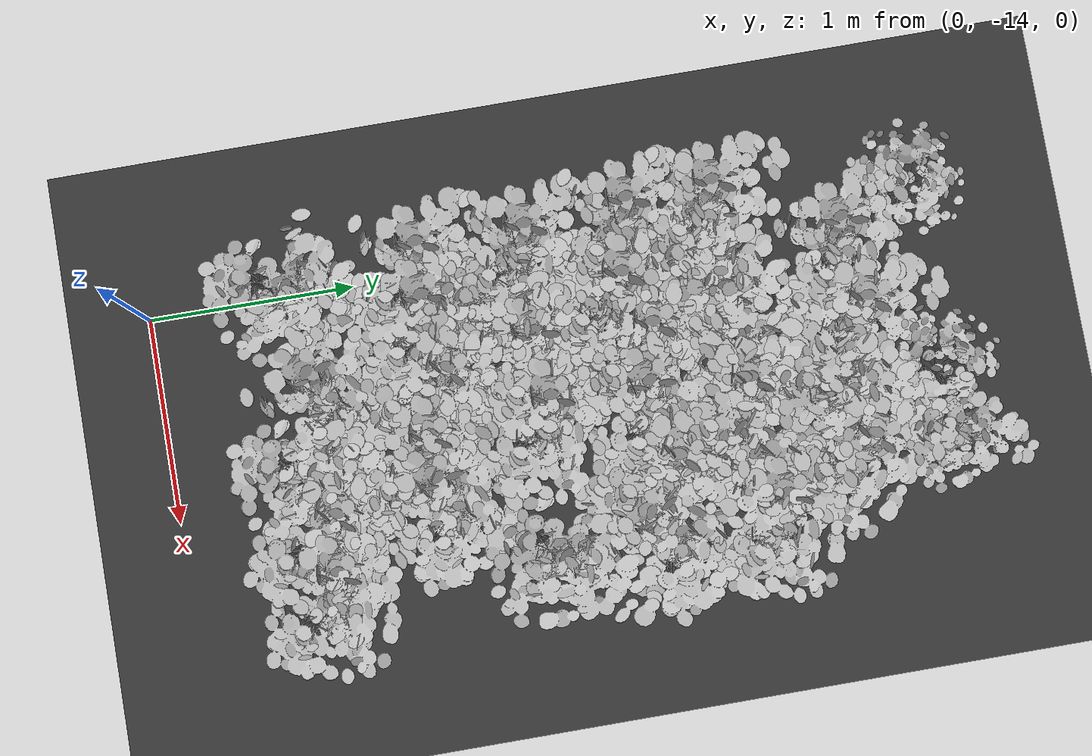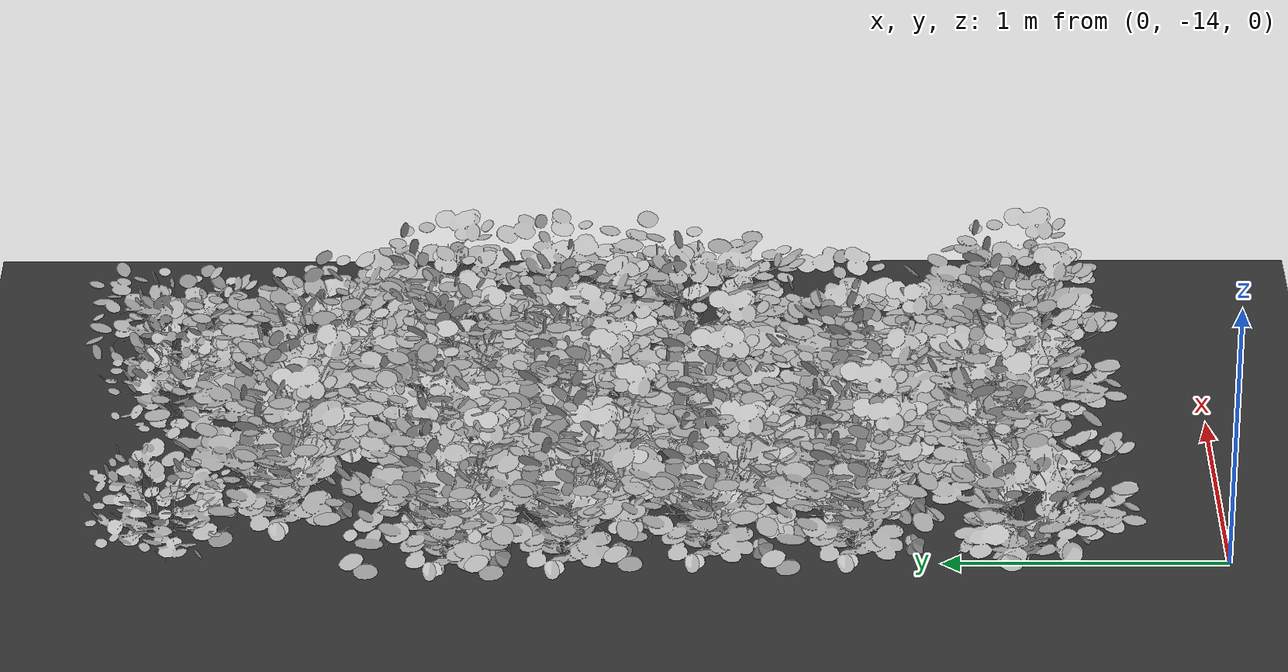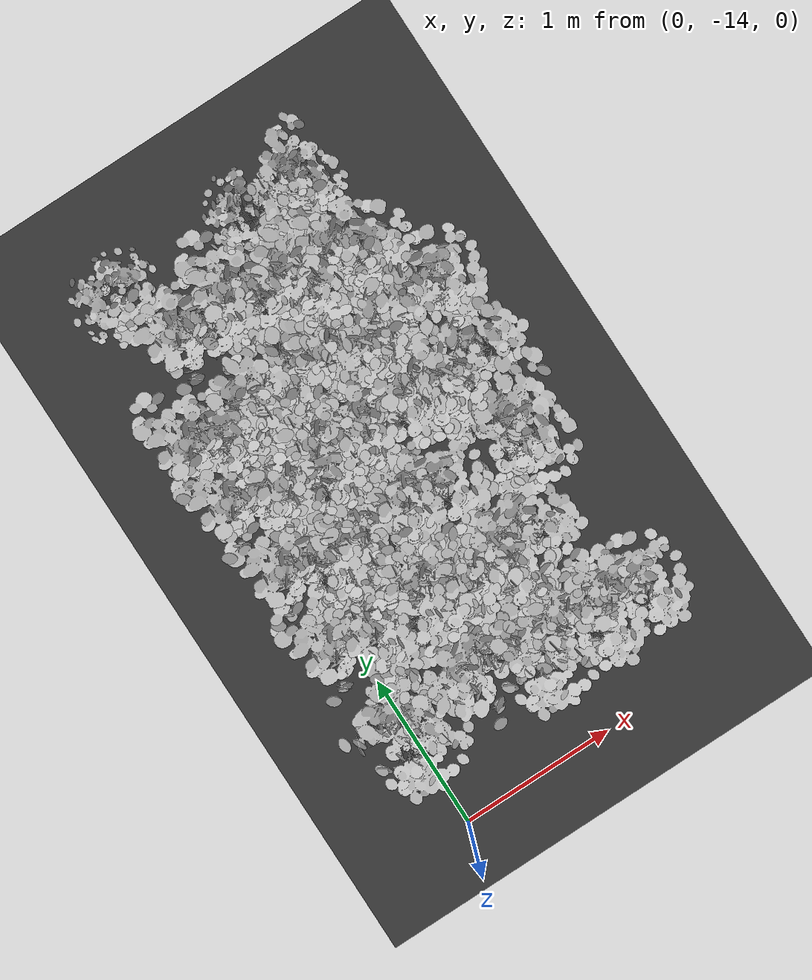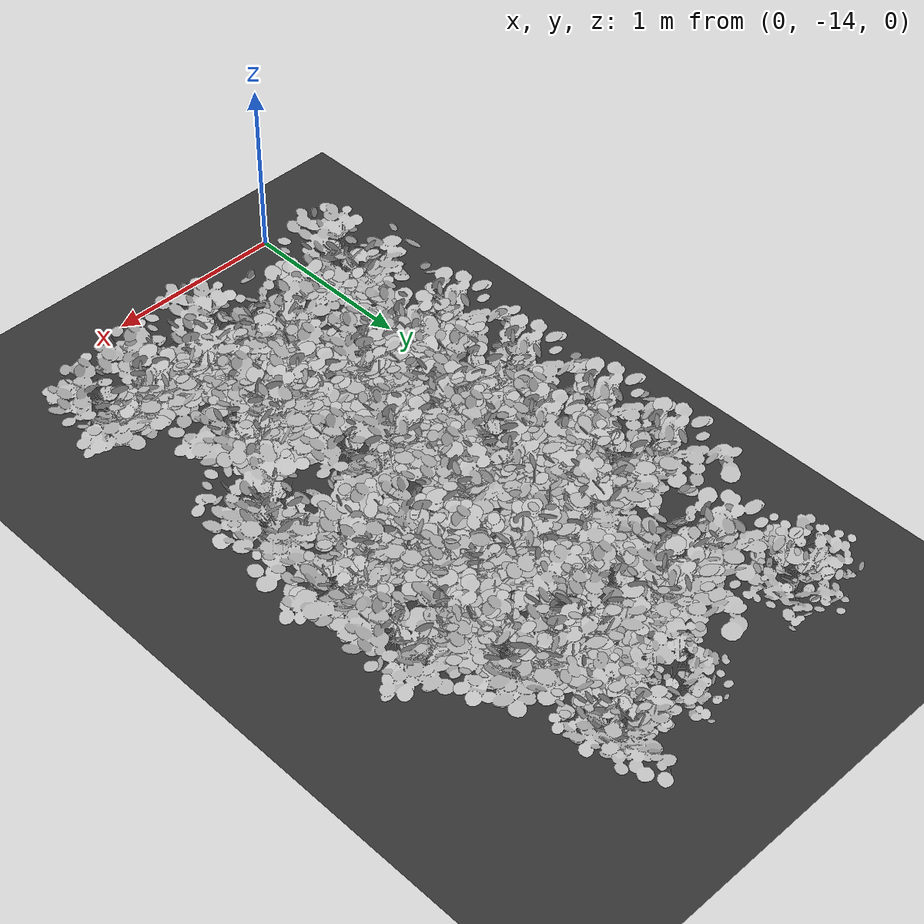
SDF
<sdf version="1.7">
 <world name="default">
  <model name="ground_plane">
   <static>1</static>
   <link name="link">
    <collision name="collision">
     <geometry><plane><normal>0 0 1</normal><size>100 100</size></plane></geometry>
     <surface>
      <contact><collide_bitmask>65535</collide_bitmask></contact>
      <friction><ode><mu>100</mu><mu2>50</mu2></ode></friction>
     </surface>
    </collision>
    <visual name="visual">
     <cast_shadows>0</cast_shadows>
     <geometry><plane><normal>0 0 1</normal><size>100 100</size></plane></geometry>
     <material>
      <ambient>0.2 0.2 0.2 1.0</ambient>
      <diffuse>0.2 0.2 0.2 1.0</diffuse>
      <specular>0.2 0.2 0.2 1.0</specular>
      <emissive>0.2 0.2 0.2 1.0</emissive>
     </material>
    </visual>
   </link>
  </model>
  <model name="ground">
   <pose>5 -0.5 0.01  3.141592654 0 0</pose>
   <static>true</static>
   <link name="body">
    <visual name="visual">
     <cast_shadows>0</cast_shadows>
     <geometry>
      <mesh><uri>file:///home/ifcosta/catkin_ws/src/cnn_line/worlds/models/ground.obj</uri></mesh>
     </geometry>
    </visual>
   </link>
  </model>
  <model name="plt_30000">
   <pose>-0.000553 -10.3 0.0132 0.0 0.0 0.64766</pose>
   <static>true</static>
   <link name="body">
    <visual name="visual">
     <geometry>
      <mesh><uri>file:///home/ifcosta/catkin_ws/src/cnn_line/worlds/models/plant35.obj</uri></mesh>
     </geometry>
    </visual>
   </link>
  </model>
  <model name="plt_40000">
   <pose>-0.000553 -13.3 0.0132 0.0 0.0 -1.082</pose>
   <static>true</static>
   <link name="body">
    <visual name="visual">
     <geometry>
      <mesh><uri>file:///home/ifcosta/catkin_ws/src/cnn_line/worlds/models/plant37.obj</uri></mesh>
     </geometry>
    </visual>
   </link>
  </model>
  <model name="plt_40002">
   <pose>0.57 -13.2 0.0132 0.0 0.0 0.66731</pose>
   <static>true</static>
   <link name="body">
    <visual name="visual">
     <geometry>
      <mesh><uri>file:///home/ifcosta/catkin_ws/src/cnn_line/worlds/models/plant37.obj</uri></mesh>
     </geometry>
    </visual>
   </link>
  </model>
  <model name="plt_30003">
   <pose>0.885 -10.3 0.0162 0.0 0.0 1.7194</pose>
   <static>true</static>
   <link name="body">
    <visual name="visual">
     <geometry>
      <mesh><uri>file:///home/ifcosta/catkin_ws/src/cnn_line/worlds/models/plant35.obj</uri></mesh>
     </geometry>
    </visual>
   </link>
  </model>
  <model name="plt_40003">
   <pose>0.885 -13.3 0.0162 0.0 0.0 -1.0955</pose>
   <static>true</static>
   <link name="body">
    <visual name="visual">
     <geometry>
      <mesh><uri>file:///home/ifcosta/catkin_ws/src/cnn_line/worlds/models/plant37.obj</uri></mesh>
     </geometry>
    </visual>
   </link>
  </model>
  <model name="plt_30004">
   <pose>1.21 -10.3 0.0178 0.0 0.0 -1.0621</pose>
   <static>true</static>
   <link name="body">
    <visual name="visual">
     <geometry>
      <mesh><uri>file:///home/ifcosta/catkin_ws/src/cnn_line/worlds/models/plant36.obj</uri></mesh>
     </geometry>
    </visual>
   </link>
  </model>
  <model name="plt_40004">
   <pose>1.21 -13.3 0.0178 0.0 0.0 -0.34675</pose>
   <static>true</static>
   <link name="body">
    <visual name="visual">
     <geometry>
      <mesh><uri>file:///home/ifcosta/catkin_ws/src/cnn_line/worlds/models/plant37.obj</uri></mesh>
     </geometry>
    </visual>
   </link>
  </model>
  <model name="plt_40005">
   <pose>1.5 -13.3 0.0163 0.0 0.0 -0.058842</pose>
   <static>true</static>
   <link name="body">
    <visual name="visual">
     <geometry>
      <mesh><uri>file:///home/ifcosta/catkin_ws/src/cnn_line/worlds/models/plant37.obj</uri></mesh>
     </geometry>
    </visual>
   </link>
  </model>
  <model name="plt_40034">
   <pose>0.0405 -12.7 0.0151 0.0 0.0 -0.020728</pose>
   <static>true</static>
   <link name="body">
    <visual name="visual">
     <geometry>
      <mesh><uri>file:///home/ifcosta/catkin_ws/src/cnn_line/worlds/models/plant37.obj</uri></mesh>
     </geometry>
    </visual>
   </link>
  </model>
  <model name="plt_40035">
   <pose>0.297 -12.7 0.019 0.0 0.0 0.081884</pose>
   <static>true</static>
   <link name="body">
    <visual name="visual">
     <geometry>
      <mesh><uri>file:///home/ifcosta/catkin_ws/src/cnn_line/worlds/models/plant37.obj</uri></mesh>
     </geometry>
    </visual>
   </link>
  </model>
  <model name="plt_40036">
   <pose>0.611 -12.7 0.0138 0.0 0.0 -0.47588</pose>
   <static>true</static>
   <link name="body">
    <visual name="visual">
     <geometry>
      <mesh><uri>file:///home/ifcosta/catkin_ws/src/cnn_line/worlds/models/plant37.obj</uri></mesh>
     </geometry>
    </visual>
   </link>
  </model>
  <model name="plt_40037">
   <pose>0.934 -12.8 0.0124 0.0 0.0 -0.18057</pose>
   <static>true</static>
   <link name="body">
    <visual name="visual">
     <geometry>
      <mesh><uri>file:///home/ifcosta/catkin_ws/src/cnn_line/worlds/models/plant37.obj</uri></mesh>
     </geometry>
    </visual>
   </link>
  </model>
  <model name="plt_40038">
   <pose>1.16 -12.7 0.014 0.0 0.0 0.52625</pose>
   <static>true</static>
   <link name="body">
    <visual name="visual">
     <geometry>
      <mesh><uri>file:///home/ifcosta/catkin_ws/src/cnn_line/worlds/models/plant37.obj</uri></mesh>
     </geometry>
    </visual>
   </link>
  </model>
  <model name="plt_40068">
   <pose>0.0357 -12.2 0.0153 0.0 0.0 -0.13847</pose>
   <static>true</static>
   <link name="body">
    <visual name="visual">
     <geometry>
      <mesh><uri>file:///home/ifcosta/catkin_ws/src/cnn_line/worlds/models/plant37.obj</uri></mesh>
     </geometry>
    </visual>
   </link>
  </model>
  <model name="plt_40069">
   <pose>0.307 -12.3 0.015 0.0 0.0 -1.3733</pose>
   <static>true</static>
   <link name="body">
    <visual name="visual">
     <geometry>
      <mesh><uri>file:///home/ifcosta/catkin_ws/src/cnn_line/worlds/models/plant37.obj</uri></mesh>
     </geometry>
    </visual>
   </link>
  </model>
  <model name="plt_40070">
   <pose>0.559 -12.2 0.0151 0.0 0.0 0.16632</pose>
   <static>true</static>
   <link name="body">
    <visual name="visual">
     <geometry>
      <mesh><uri>file:///home/ifcosta/catkin_ws/src/cnn_line/worlds/models/plant37.obj</uri></mesh>
     </geometry>
    </visual>
   </link>
  </model>
  <model name="plt_40071">
   <pose>0.858 -12.2 0.0126 0.0 0.0 -0.050655</pose>
   <static>true</static>
   <link name="body">
    <visual name="visual">
     <geometry>
      <mesh><uri>file:///home/ifcosta/catkin_ws/src/cnn_line/worlds/models/plant37.obj</uri></mesh>
     </geometry>
    </visual>
   </link>
  </model>
  <model name="plt_40073">
   <pose>1.47 -12.2 0.0157 0.0 0.0 -1.381</pose>
   <static>true</static>
   <link name="body">
    <visual name="visual">
     <geometry>
      <mesh><uri>file:///home/ifcosta/catkin_ws/src/cnn_line/worlds/models/plant37.obj</uri></mesh>
     </geometry>
    </visual>
   </link>
  </model>
  <model name="plt_40102">
   <pose>-0.0036 -11.7 0.0161 0.0 0.0 -0.064446</pose>
   <static>true</static>
   <link name="body">
    <visual name="visual">
     <geometry>
      <mesh><uri>file:///home/ifcosta/catkin_ws/src/cnn_line/worlds/models/plant37.obj</uri></mesh>
     </geometry>
    </visual>
   </link>
  </model>
  <model name="plt_40103">
   <pose>0.327 -11.8 0.0177 0.0 0.0 -0.24208</pose>
   <static>true</static>
   <link name="body">
    <visual name="visual">
     <geometry>
      <mesh><uri>file:///home/ifcosta/catkin_ws/src/cnn_line/worlds/models/plant37.obj</uri></mesh>
     </geometry>
    </visual>
   </link>
  </model>
  <model name="plt_40104">
   <pose>0.583 -11.7 0.0131 0.0 0.0 -0.26739</pose>
   <static>true</static>
   <link name="body">
    <visual name="visual">
     <geometry>
      <mesh><uri>file:///home/ifcosta/catkin_ws/src/cnn_line/worlds/models/plant37.obj</uri></mesh>
     </geometry>
    </visual>
   </link>
  </model>
  <model name="plt_40105">
   <pose>0.88 -11.7 0.0171 0.0 0.0 0.22045</pose>
   <static>true</static>
   <link name="body">
    <visual name="visual">
     <geometry>
      <mesh><uri>file:///home/ifcosta/catkin_ws/src/cnn_line/worlds/models/plant37.obj</uri></mesh>
     </geometry>
    </visual>
   </link>
  </model>
  <model name="plt_40106">
   <pose>1.18 -11.7 0.0154 0.0 0.0 -0.52182</pose>
   <static>true</static>
   <link name="body">
    <visual name="visual">
     <geometry>
      <mesh><uri>file:///home/ifcosta/catkin_ws/src/cnn_line/worlds/models/plant37.obj</uri></mesh>
     </geometry>
    </visual>
   </link>
  </model>
  <model name="plt_40107">
   <pose>1.47 -11.7 0.0135 0.0 0.0 0.90454</pose>
   <static>true</static>
   <link name="body">
    <visual name="visual">
     <geometry>
      <mesh><uri>file:///home/ifcosta/catkin_ws/src/cnn_line/worlds/models/plant37.obj</uri></mesh>
     </geometry>
    </visual>
   </link>
  </model>
  <model name="plt_40136">
   <pose>-0.0215 -11.3 0.0179 0.0 0.0 -0.15117</pose>
   <static>true</static>
   <link name="body">
    <visual name="visual">
     <geometry>
      <mesh><uri>file:///home/ifcosta/catkin_ws/src/cnn_line/worlds/models/plant37.obj</uri></mesh>
     </geometry>
    </visual>
   </link>
  </model>
  <model name="plt_40137">
   <pose>0.264 -11.3 0.0141 0.0 0.0 -1.2981</pose>
   <static>true</static>
   <link name="body">
    <visual name="visual">
     <geometry>
      <mesh><uri>file:///home/ifcosta/catkin_ws/src/cnn_line/worlds/models/plant37.obj</uri></mesh>
     </geometry>
    </visual>
   </link>
  </model>
  <model name="plt_40138">
   <pose>0.559 -11.2 0.014 0.0 0.0 -2.1423</pose>
   <static>true</static>
   <link name="body">
    <visual name="visual">
     <geometry>
      <mesh><uri>file:///home/ifcosta/catkin_ws/src/cnn_line/worlds/models/plant37.obj</uri></mesh>
     </geometry>
    </visual>
   </link>
  </model>
  <model name="plt_40139">
   <pose>0.912 -11.3 0.0127 0.0 0.0 -0.28607</pose>
   <static>true</static>
   <link name="body">
    <visual name="visual">
     <geometry>
      <mesh><uri>file:///home/ifcosta/catkin_ws/src/cnn_line/worlds/models/plant37.obj</uri></mesh>
     </geometry>
    </visual>
   </link>
  </model>
  <model name="plt_40140">
   <pose>1.18 -11.3 0.0153 0.0 0.0 1.0217</pose>
   <static>true</static>
   <link name="body">
    <visual name="visual">
     <geometry>
      <mesh><uri>file:///home/ifcosta/catkin_ws/src/cnn_line/worlds/models/plant37.obj</uri></mesh>
     </geometry>
    </visual>
   </link>
  </model>
  <model name="plt_40141">
   <pose>1.49 -11.2 0.0152 0.0 0.0 -0.038256</pose>
   <static>true</static>
   <link name="body">
    <visual name="visual">
     <geometry>
      <mesh><uri>file:///home/ifcosta/catkin_ws/src/cnn_line/worlds/models/plant37.obj</uri></mesh>
     </geometry>
    </visual>
   </link>
  </model>
  <model name="plt_40171">
   <pose>0.268 -10.7 0.0156 0.0 0.0 0.10675</pose>
   <static>true</static>
   <link name="body">
    <visual name="visual">
     <geometry>
      <mesh><uri>file:///home/ifcosta/catkin_ws/src/cnn_line/worlds/models/plant37.obj</uri></mesh>
     </geometry>
    </visual>
   </link>
  </model>
  <model name="plt_40172">
   <pose>0.625 -10.7 0.0164 0.0 0.0 -0.35852</pose>
   <static>true</static>
   <link name="body">
    <visual name="visual">
     <geometry>
      <mesh><uri>file:///home/ifcosta/catkin_ws/src/cnn_line/worlds/models/plant37.obj</uri></mesh>
     </geometry>
    </visual>
   </link>
  </model>
  <model name="plt_40173">
   <pose>0.907 -10.8 0.0145 0.0 0.0 -1.0803</pose>
   <static>true</static>
   <link name="body">
    <visual name="visual">
     <geometry>
      <mesh><uri>file:///home/ifcosta/catkin_ws/src/cnn_line/worlds/models/plant37.obj</uri></mesh>
     </geometry>
    </visual>
   </link>
  </model>
  <model name="plt_40174">
   <pose>1.24 -10.8 0.0161 0.0 0.0 -0.5581</pose>
   <static>true</static>
   <link name="body">
    <visual name="visual">
     <geometry>
      <mesh><uri>file:///home/ifcosta/catkin_ws/src/cnn_line/worlds/models/plant37.obj</uri></mesh>
     </geometry>
    </visual>
   </link>
  </model>
 </world>
</sdf>
